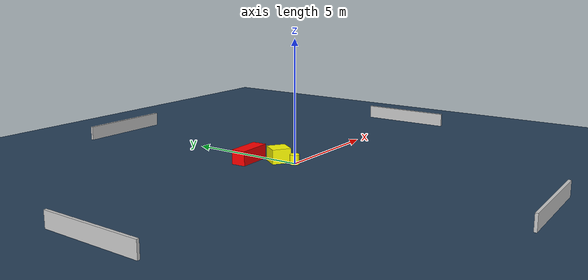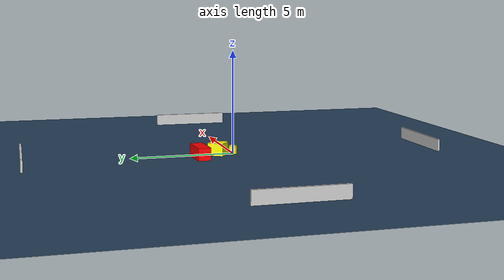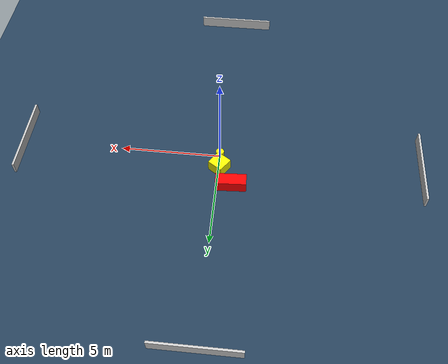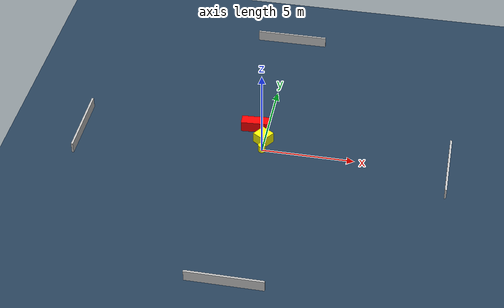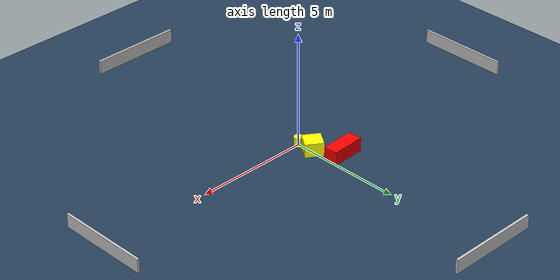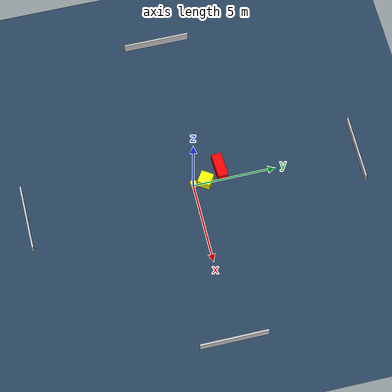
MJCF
<?xml version="1.0" ?>
<mujoco model="generated_environment">
  <option timestep="0.01" integrator="RK4" cone="elliptic"/>
  <default>
    <geom density="1"/>
  </default>
  <asset>
    <texture builtin="gradient" height="3072" name="skybox" rgb1="0.3 0.5 0.7" rgb2="0 0 0" type="skybox" width="512"/>
    <texture builtin="checker" height="300" name="groundplane" rgb1="0.2 0.3 0.4" rgb2="0.1 0.2 0.3" type="2d" width="300"/>
    <material name="groundplane" reflectance="0.2" texrepeat="5 5" texture="groundplane"/>
  </asset>
  <worldbody>
    <light dir="0 0 -1" directional="true" pos="0 0 1.5"/>
    <geom condim="3" friction="0.5 0.005 0.001" material="groundplane" name="floor" pos="0 0 0" size="0 0 0.05" type="plane"/>
    <body name="walls">
      <geom name="wall_1" condim="4" pos="-10.0 0.0 0.3" rgba="0.800000011920929 0.800000011920929 0.800000011920929 1.0" size="0.05 2.0 0.3" type="box"/>
      <geom name="wall_2" condim="4" pos="10.0 0.0 0.3" rgba="0.800000011920929 0.800000011920929 0.800000011920929 1.0" size="0.05 2.0 0.3" type="box"/>
      <geom name="wall_3" condim="4" pos="0.0 -10.0 0.3" rgba="0.800000011920929 0.800000011920929 0.800000011920929 1.0" size="2.0 0.05 0.3" type="box"/>
      <geom name="wall_4" condim="4" pos="0.0 10.0 0.3" rgba="0.800000011920929 0.800000011920929 0.800000011920929 1.0" size="2.0 0.05 0.3" type="box"/>
    </body>
    <body name="robot">
      <joint name="joint_x" type="slide" pos="0 0 0" axis="1 0 0"/>
      <joint name="joint_y" type="slide" pos="0 0 0" axis="0 1 0"/>
      <geom name="robot" type="cylinder" pos="0.0 0.0 0.2" size="0.2 0.2 0.0" mass="5.0" friction="1.0 0.005 0.0001" condim="4" rgba="1.0 1.0 0.0 1.0"/>
    </body>
    <body name="obstacle_1_movable">
      <geom name="obstacle_1_movable" condim="4" pos="-0.05047011760302358 0.7526069284599064 0.3" euler="0 0 236.01621230987715" friction="0.0 0.005 0.001" rgba="1.0 1.0 0.0 1.0" size="0.3873692608630329 0.3963207877188154 0.3" type="box" mass="0.1"/>
      <joint type="free"/>
    </body>
    <body name="obstacle_2_static">
      <geom name="obstacle_2_static" condim="4" pos="-0.702687116520016 1.7659564646545385 0.3" euler="0 0 93.06865307471607" friction="0.0 0.005 0.001" rgba="1.0 0.0 0.0 1.0" size="0.3032613262511389 0.7468471895940845 0.3" type="box"/>
    </body>
  </worldbody>
  <actuator>
    <motor name="actuator_x" joint="joint_x" gear="1" ctrlrange="-1 1"/>
    <motor name="actuator_y" joint="joint_y" gear="1" ctrlrange="-1 1"/>
  </actuator>
</mujoco>
